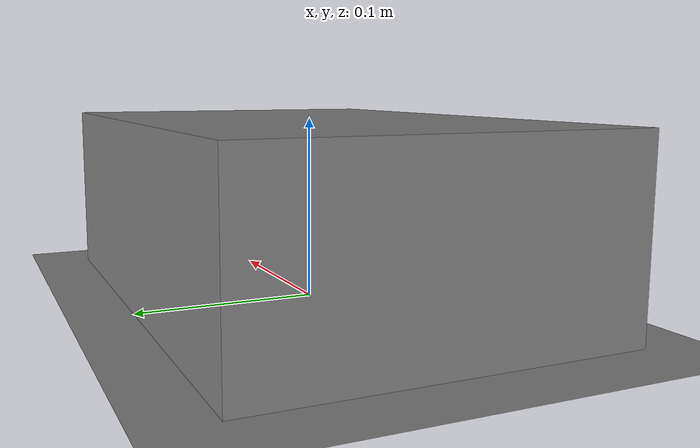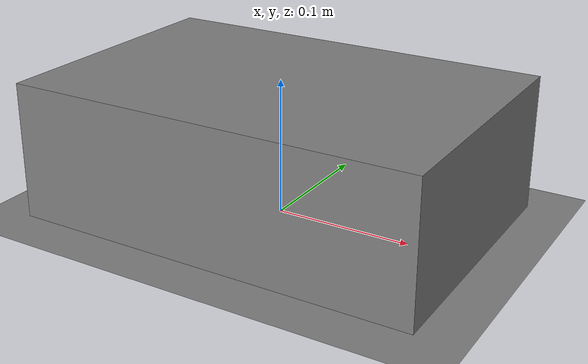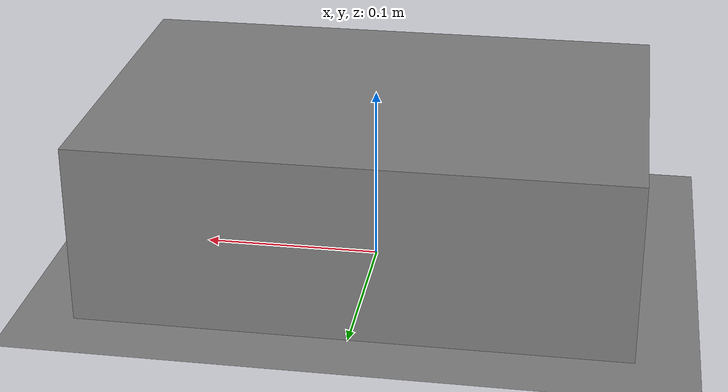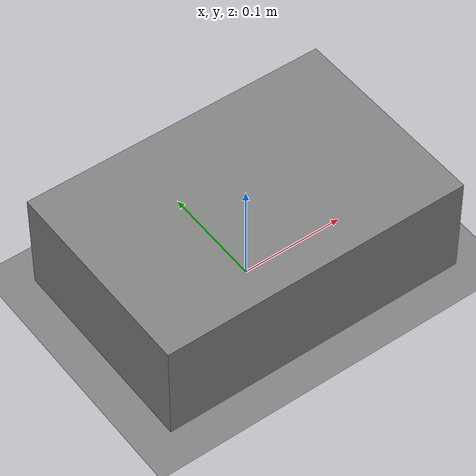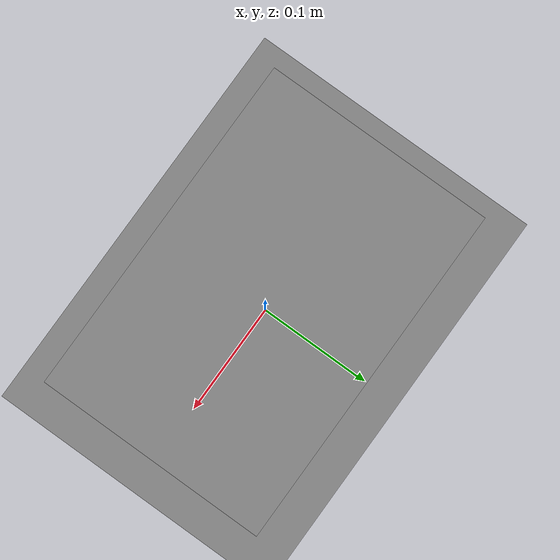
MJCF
<mujoco model="contact_box">
  <!--
    Ours (not MuJoCo's): one box on a plane (plane-box, up to four contacts), friction 0.5,
    MuJoCo's default solref and solimp. Its corners carry m g / 4 each at rest.
  -->
  <option timestep="0.002"/>

  <worldbody>
    <geom name="floor" type="plane" size="5 5 .1" friction="0.5 0.005 0.0001"/>

    <body name="block" pos="0 0 .05">
      <freejoint/>
      <geom name="block_geom" type="box" size=".15 .1 .05" mass="1" friction="0.5 0.005 0.0001"/>
    </body>
  </worldbody>
</mujoco>
